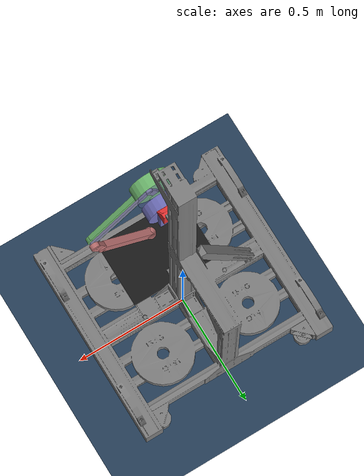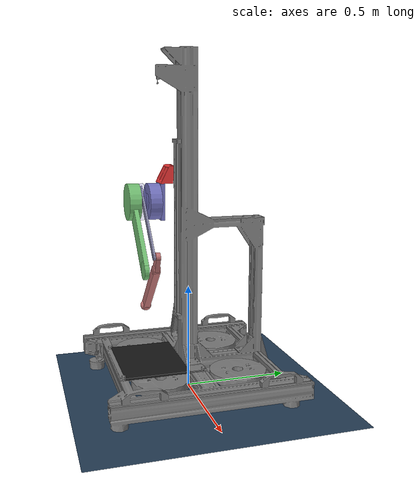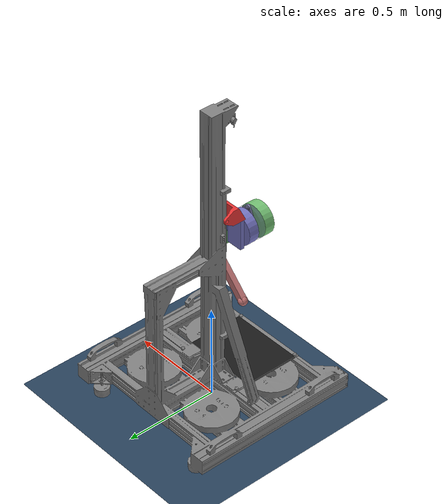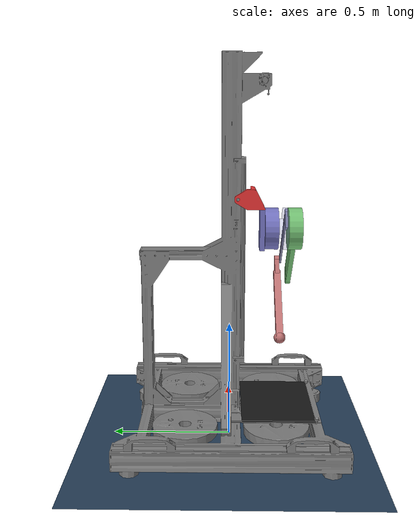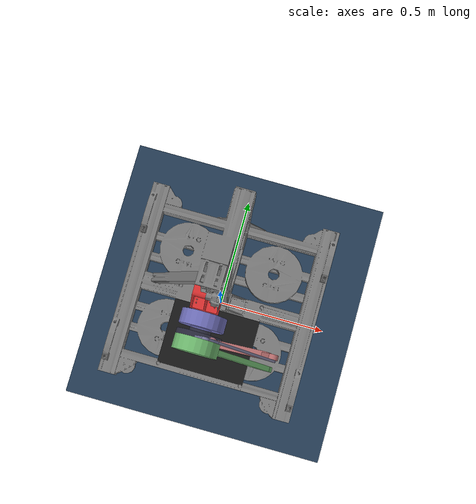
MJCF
<mujoco model="Second Leg">
    <compiler eulerseq="zyx" angle="degree" meshdir="./assets/" texturedir="./assets/" autolimits="true"/>

    <option timestep="0.0005" gravity="0.0 0.0 -9.8"/>
    <!-- Timestep is set to 0.0005 because the standard controller runs at 2 kHz -->
    <!-- Larger values still have stable dynamics -->

    <include file="closed_chain_leg.xml"/>

    <statistic center="0 0 0.55" extent="1.1"/>

    <visual>
        <headlight diffuse="0.6 0.6 0.6" ambient="0.3 0.3 0.3" specular="0 0 0"/>
        <rgba haze="0.15 0.25 0.35 1"/>
        <global azimuth="150" elevation="-20"/>
        <scale framewidth="0.02" jointwidth="0.02" actuatorlength="1.0"
                actuatorwidth="0.02" constraint="0.05" contactwidth="0.05"/>
    </visual>

    <asset>
        <texture type="skybox" builtin="gradient" rgb1="0.3 0.5 0.7" rgb2="0 0 0" width="512" height="3072"/>
        <texture type="2d" name="groundplane" builtin="checker" mark="edge" rgb1="0.2 0.3 0.4" rgb2="0.1 0.2 0.3"
        markrgb="0.8 0.8 0.8" width="300" height="300"/>
        <material name="groundplane" texture="groundplane" texuniform="true" texrepeat="5 5" reflectance="0.2"/>
    </asset>

    <worldbody>
        <light pos="0 0 3" dir="0 0 -1" directional="false"/>
        <light pos="2.0 0 3" dir="0 0 -1" directional="false"/>
        <light pos="0 2.0 3" dir="0 0 -1" directional="false"/>
        <light pos="-2.0 0 3" dir="0 0 -1" directional="false"/>
        <light pos="0 -2.0 3" dir="0 0 -1" directional="false"/>
        <geom name="floor" size="0 0 .125" type="plane" material="groundplane" conaffinity="15" condim="3"/>
    </worldbody>

</mujoco>

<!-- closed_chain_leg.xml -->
<mujoco model="closed_chain_leg">
    <default>
        <geom contype="1" conaffinity="0" solref="0.0005 1.0"/>

        <default class="part">
        <geom group="1" contype="2" conaffinity="1"/>
        </default>

        <default class="mockup">
        <geom group="1" contype="4"/>
        </default>

    </default>

    <asset>
        <material name="pelvis" rgba="0.45 0.45 0.75 1.0" />
        <material name="thigh" rgba="0.45 0.75 0.45 1.0" />
        <material name="shin" rgba="0.75 0.45 0.45 1.0" />
        <material name="foot" rgba="0.86 0.68 0.68 1.0" />
        <material name="loop1" rgba="0.52 0.52 0.65 1.0" />
        <material name="loop2" rgba="1.0 0.75 0.0 1.0" />
        <mesh name="cart" file="cart.STL"/>
        <mesh name="base" file="base.stl"/>
    </asset>

    <worldbody>
        <body name="base" pos="0.0 0.0 0.0">
            <geom type="mesh" mesh="base" euler="0.0 0.0 90.0"  class="mockup"/>
            <geom type="box" size="0.2 0.15 0.005" pos="0.0 -0.2 0.15" density="7700.0" rgba="0.1 0.1 0.1 1.0"/>

            <body name="cart" pos="0.0325 -0.14 1.0">
                <geom type="mesh" mesh="cart" euler="0.0 -180.0 -90.0" mass="0.2" rgba="0.9 0.2 0.2 1.0" class="mockup"/>
                <joint name="rail" type="slide" range="-0.5 0.5"/>

                <body name="pelvis" pos="-0.05 0.01 -0.085" euler = "0 0 90">
                    <geom type="box" size="0.045 0.085 0.01" density="750" material="pelvis" class="part"/>
                    <geom type="cylinder" size="0.085 0.0275" pos="0 0 0.0375" zaxis="0 0 1"
                        material="pelvis" mass="1.74" class="part"/>

                    <body name="thigh" pos="0 0 0.1325" euler="-45 0 0">
                        <geom type="cylinder" size="0.04 0.01" pos = "0 0 -0.0575" zaxis = "0 0 1"  rgba="0.45 0.45 0.75 0.25" class="part"/>
                        <geom type="cylinder" size="0.085 0.01" pos = "0 0 -0.0375" zaxis = "0 0 1"  rgba="0.45 0.45 0.75 .25" class="part"/>
                        <geom type="cylinder" size="0.085 0.0275" pos="0.0 0.0 0.0" zaxis="0 0 1" mass="1.74" material="thigh" class="part"/>
                        <geom type="box" size="0.185 0.04 0.01" pos="0.185 0 0.0" density="2000" material="thigh" class="part"/>
                        <geom type="cylinder" size="0.04 0.01" pos="0.370 0 0" material="thigh" class="part"/>
                        <joint name="hip" type="hinge" ref="-45" damping="0.01"/>

                        <body name="shin" pos="0.370 0.0  -0.0475" euler="-90 0 0">
                            <geom type="box" size="0.1565 0.02 0.015" pos="0.1565 0 0.0" density="2000" material="shin" class="part"/>
                            <geom type="cylinder" size="0.02 0.015" pos="0 0 0" material="shin" class="part"/>
                            <geom type="cylinder" size="0.02 0.015" pos=".313 0 0" material="shin" class="part"/>
                            <site name='tip' size = "0.025" pos = ".313 0 0" material ="shin"/>
                            <joint name="knee" type="hinge" ref="-90" damping="0.01"/>
                            <body pos="0 0 0" euler = "20 0 0">
                                <geom type="box" size="0.034 0.02 0.01" pos="-.034 0 0" material = "shin"  density="2000" class = "part"/>
                                <geom type="cylinder" size=".02 .01" pos="-0.068 0 0" density="2000" material ="shin"/>
                            </body>
                        </body>
                        <body name="knee_lever" pos="0.0 0 -0.0325" euler="110 0 0">
                            <geom type="box" size=".034 .015 0.005" pos = ".034 0 0" material ="loop1" density="2000" zaxis = "0 0 1"  class="part"/>
                            <geom type="cylinder" size=".015 0.005" pos="0.068 0 0" material ="loop1" zaxis = "0 0 1" density="5000" class="part"/>
                            <joint name="joint_knee_lever" type = "hinge" axis="0 0 1" ref = "110"/>

                            <body name = 'knee_rod' pos=".068 0 0" euler = "-110 0 0">
                                <geom type="box" size=".185 .014 .0045 " pos = ".185 0 0" material ="loop1" density="2000" zaxis = "0 0 1"  class="part"/>
                                <geom type="cylinder" size=".014 .0045" pos="0.370 0 0" material ="loop1" zaxis = "0 0 1" density="5000" class="part"/>
                                <joint name="joint_knee_rod" type = "hinge" axis="0 0 1" ref = "-110"/>
                            </body>
                        </body>
                    </body>
                </body>
            </body>
        </body>
    </worldbody>

    <equality>
        <connect name="shin_constrain" body1="shin" body2="knee_rod" anchor="-0.0639 -0.02326 0.0" solref="0.0005 1.0"/>
    </equality>

   <actuator>
		<motor name="torque_hip" joint="hip"  gear="1" ctrllimited="true" ctrlrange="-100 100"/>
		<motor name="torque_knee" joint="joint_knee_lever"  gear="1" ctrllimited="true" ctrlrange="-100 100"/>
    </actuator>

    <sensor>
        <jointpos name="rail_output" joint="rail"/>

        <actuatorpos name="hip_q" actuator="torque_hip"/>
        <actuatorpos name="knee_q" actuator="torque_knee"/>

        <actuatorvel name="hip_dq" actuator="torque_hip"/>
        <actuatorvel name="knee_dq" actuator="torque_knee"/>

        <actuatorfrc name='act_torque_hip' actuator="torque_hip"/>
        <actuatorfrc name='act_torque_knee' actuator="torque_knee"/>
    </sensor>

</mujoco>
